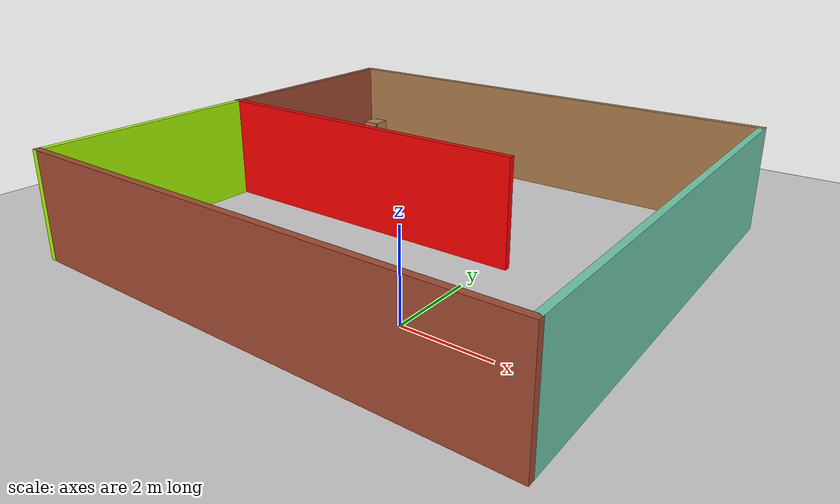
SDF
<sdf version="1.6">
 <world name="default">
  <light name="sun" type="directional">
   <pose>0 0 10 0 -0 0</pose>
   <diffuse>0.8 0.8 0.8 1</diffuse>
   <specular>0.2 0.2 0.2 1</specular>
   <attenuation>
    <range>1000</range>
    <constant>0.9</constant>
    <linear>0.01</linear>
    <quadratic>0.001</quadratic>
   </attenuation>
   <direction>-0.5 0.1 -0.9</direction>
  </light>
  <model name="ground_plane">
   <static>1</static>
   <link name="link">
    <collision name="collision">
     <geometry><plane><normal>0 0 1</normal><size>100 100</size></plane></geometry>
     <surface>
      <contact><collide_bitmask>65535</collide_bitmask></contact>
      <friction><ode><mu>100</mu><mu2>50</mu2></ode></friction>
     </surface>
    </collision>
    <visual name="visual">
     <cast_shadows>0</cast_shadows>
     <geometry><plane><normal>0 0 1</normal><size>100 100</size></plane></geometry>
     <material>
      <script><uri>file://media/materials/scripts/gazebo.material</uri><name>Gazebo/Grey</name></script>
     </material>
    </visual>
   </link>
  </model>
  <gravity>0 0 -9.8</gravity>
  <magnetic_field>6e-06 2.3e-05 -4.2e-05</magnetic_field>
  <atmosphere type="adiabatic"/>
  <physics name="default_physics" default="0" type="ode">
   <max_step_size>0.001</max_step_size>
   <real_time_factor>1</real_time_factor>
   <real_time_update_rate>1000</real_time_update_rate>
  </physics>
  <scene><ambient>0.4 0.4 0.4 1</ambient><background>0.7 0.7 0.7 1</background><shadows>1</shadows></scene>
  <spherical_coordinates>
   <surface_model>EARTH_WGS84</surface_model>
   <latitude_deg>0</latitude_deg>
   <longitude_deg>0</longitude_deg>
   <elevation>0</elevation>
   <heading_deg>0</heading_deg>
  </spherical_coordinates>
  <model name="simple_room">
   <pose>-1.98701 3.15579 0 0 -0 0</pose>
   <link name="Wall_10">
    <collision name="Wall_10_Collision">
     <geometry><box><size>11.75 0.15 2.5</size></box></geometry>
     <pose>0 0 1.25 0 -0 0</pose>
    </collision>
    <visual name="Wall_10_Visual">
     <pose>0 0 1.25 0 -0 0</pose>
     <geometry><box><size>11.75 0.15 2.5</size></box></geometry>
     <material>
      <script><uri>file://media/materials/scripts/gazebo.material</uri><name>Gazebo/Wood</name></script>
      <ambient>0.333333 0 0 1</ambient>
     </material>
     <meta><layer>0</layer></meta>
    </visual>
    <pose>0.017858 5.35 0 0 -0 0</pose>
   </link>
   <link name="Wall_11">
    <collision name="Wall_11_Collision">
     <geometry><box><size>10.75 0.15 2.5</size></box></geometry>
     <pose>0 0 1.25 0 -0 0</pose>
    </collision>
    <visual name="Wall_11_Visual">
     <pose>0 0 1.25 0 -0 0</pose>
     <geometry><box><size>10.75 0.15 2.5</size></box></geometry>
     <material>
      <script><uri>file://media/materials/scripts/gazebo.material</uri><name>Gazebo/Grey</name></script>
      <ambient>0.435294 0.796078 0.67451 1</ambient>
     </material>
     <meta><layer>0</layer></meta>
    </visual>
    <pose>5.81786 0.049997 0 0 0 -1.5708</pose>
   </link>
   <link name="Wall_4">
    <collision name="Wall_4_Collision">
     <geometry><box><size>11.75 0.15 2.5</size></box></geometry>
     <pose>0 0 1.25 0 -0 0</pose>
    </collision>
    <visual name="Wall_4_Visual">
     <pose>0 0 1.25 0 -0 0</pose>
     <geometry><box><size>11.75 0.15 2.5</size></box></geometry>
     <material>
      <script><uri>file://media/materials/scripts/gazebo.material</uri><name>Gazebo/Bricks</name></script>
      <ambient>0.333333 0 0.498039 1</ambient>
     </material>
     <meta><layer>0</layer></meta>
    </visual>
    <pose>0.017858 -5.35 0 0 -0 0</pose>
   </link>
   <link name="Wall_6">
    <collision name="Wall_6_Collision">
     <geometry><box><size>5.55888 0.15 2.5</size></box></geometry>
     <pose>0 0 1.25 0 -0 0</pose>
    </collision>
    <visual name="Wall_6_Visual">
     <pose>0 0 1.25 0 -0 0</pose>
     <geometry><box><size>5.55888 0.15 2.5</size></box></geometry>
     <material>
      <script><uri>file://media/materials/scripts/gazebo.material</uri><name>Gazebo/Grey</name></script>
      <ambient>0.666667 1 0 1</ambient>
     </material>
     <meta><layer>0</layer></meta>
    </visual>
    <pose>-5.7847 -2.64577 0 0 -0 1.57174</pose>
   </link>
   <link name="Wall_7">
    <collision name="Wall_7_Collision">
     <geometry><box><size>8.25 0.15 2.5</size></box></geometry>
     <pose>0 0 1.25 0 -0 0</pose>
    </collision>
    <visual name="Wall_7_Visual">
     <pose>0 0 1.25 0 -0 0</pose>
     <geometry><box><size>8.25 0.15 2.5</size></box></geometry>
     <material>
      <script><uri>file://media/materials/scripts/gazebo.material</uri><name>Gazebo/Grey</name></script>
      <ambient>1 0 0 1</ambient>
     </material>
     <meta><layer>0</layer></meta>
    </visual>
    <pose>-1.76786 0.05847 0 0 -0 0</pose>
   </link>
   <link name="Wall_9">
    <collision name="Wall_9_Collision">
     <geometry><box><size>5.44194 0.15 2.5</size></box></geometry>
     <pose>0 0 1.25 0 -0 0</pose>
    </collision>
    <visual name="Wall_9_Visual">
     <pose>0 0 1.25 0 -0 0</pose>
     <geometry><box><size>5.44194 0.15 2.5</size></box></geometry>
     <material>
      <script><uri>file://media/materials/scripts/gazebo.material</uri><name>Gazebo/Bricks</name></script>
      <ambient>1 1 1 1</ambient>
     </material>
     <meta><layer>0</layer></meta>
    </visual>
    <pose>-5.7847 2.70423 0 0 -0 1.56983</pose>
   </link>
   <static>1</static>
  </model>
  <model name="cabinet">
   <static>1</static>
   <link name="cabinet_bottom_plate">
    <inertial>
     <pose>0 0 -1 0 -0 0</pose>
     <inertia><ixx>2.05</ixx><ixy>0</ixy><ixz>0</ixz><iyy>2.05</iyy><iyz>0</iyz><izz>2.05</izz></inertia>
     <mass>25</mass>
    </inertial>
    <collision name="cabinet_bottom_plate_geom">
     <pose>0 0 0.01 0 -0 0</pose>
     <geometry><box><size>0.45 0.45 0.02</size></box></geometry>
    </collision>
    <visual name="cabinet_bottom_plate_geom_visual">
     <pose>0 0 0.01 0 -0 0</pose>
     <geometry><box><size>0.45 0.45 0.02</size></box></geometry>
     <material>
      <script><uri>file://media/materials/scripts/gazebo.material</uri><name>Gazebo/Wood</name></script>
     </material>
    </visual>
    <collision name="cabinet_bottom_plate_geom_cabinet_back_plate">
     <pose>0.235 0 0.51 0 -0 0</pose>
     <geometry><box><size>0.02 0.45 1.02</size></box></geometry>
    </collision>
    <visual name="cabinet_bottom_plate_geom_cabinet_back_plate_visual">
     <pose>0.235 0 0.51 0 -0 0</pose>
     <geometry><box><size>0.02 0.45 1.02</size></box></geometry>
     <material>
      <script><uri>file://media/materials/scripts/gazebo.material</uri><name>Gazebo/Wood</name></script>
     </material>
    </visual>
    <collision name="cabinet_bottom_plate_geom_cabinet_left_plate">
     <pose>0 0.235 0.51 0 -0 0</pose>
     <geometry><box><size>0.45 0.02 1.02</size></box></geometry>
    </collision>
    <visual name="cabinet_bottom_plate_geom_cabinet_left_plate_visual">
     <pose>0 0.235 0.51 0 -0 0</pose>
     <geometry><box><size>0.45 0.02 1.02</size></box></geometry>
     <material>
      <script><uri>file://media/materials/scripts/gazebo.material</uri><name>Gazebo/Wood</name></script>
     </material>
    </visual>
    <collision name="cabinet_bottom_plate_geom_cabinet_middle_plate">
     <pose>0 0 0.51 0 -0 0</pose>
     <geometry><box><size>0.45 0.45 0.02</size></box></geometry>
    </collision>
    <visual name="cabinet_bottom_plate_geom_cabinet_middle_plate_visual">
     <pose>0 0 0.51 0 -0 0</pose>
     <geometry><box><size>0.45 0.45 0.02</size></box></geometry>
     <material>
      <script><uri>file://media/materials/scripts/gazebo.material</uri><name>Gazebo/Wood</name></script>
     </material>
    </visual>
    <collision name="cabinet_bottom_plate_geom_cabinet_right_plate">
     <pose>0 -0.235 0.51 0 -0 0</pose>
     <geometry><box><size>0.45 0.02 1.02</size></box></geometry>
    </collision>
    <visual name="cabinet_bottom_plate_geom_cabinet_right_plate_visual">
     <pose>0 -0.235 0.51 0 -0 0</pose>
     <geometry><box><size>0.45 0.02 1.02</size></box></geometry>
     <material>
      <script><uri>file://media/materials/scripts/gazebo.material</uri><name>Gazebo/Wood</name></script>
     </material>
    </visual>
    <collision name="cabinet_bottom_plate_geom_cabinet_top_plate">
     <pose>0 0 1.01 0 -0 0</pose>
     <geometry><box><size>0.45 0.45 0.02</size></box></geometry>
    </collision>
    <visual name="cabinet_bottom_plate_geom_cabinet_top_plate_visual">
     <pose>0 0 1.01 0 -0 0</pose>
     <geometry><box><size>0.45 0.45 0.02</size></box></geometry>
     <material>
      <script><uri>file://media/materials/scripts/gazebo.material</uri><name>Gazebo/Wood</name></script>
     </material>
    </visual>
   </link>
   <pose>-7.149 7.96706 0 0 -0 0</pose>
  </model>
  <model name="table">
   <static>1</static>
   <link name="link">
    <collision name="surface">
     <pose>0 0 1 0 -0 0</pose>
     <geometry><box><size>1.5 0.8 0.03</size></box></geometry>
     <surface><friction><ode><mu>0.6</mu><mu2>0.6</mu2></ode></friction></surface>
    </collision>
    <visual name="visual1">
     <pose>0 0 1 0 -0 0</pose>
     <geometry><box><size>1.5 0.8 0.03</size></box></geometry>
     <material>
      <script><uri>file://media/materials/scripts/gazebo.material</uri><name>Gazebo/Wood</name></script>
     </material>
    </visual>
    <collision name="front_left_leg">
     <pose>0.68 0.38 0.5 0 -0 0</pose>
     <geometry><cylinder><radius>0.02</radius><length>1</length></cylinder></geometry>
    </collision>
    <visual name="front_left_leg">
     <pose>0.68 0.38 0.5 0 -0 0</pose>
     <geometry><cylinder><radius>0.02</radius><length>1</length></cylinder></geometry>
     <material>
      <script><uri>file://media/materials/scripts/gazebo.material</uri><name>Gazebo/Grey</name></script>
     </material>
    </visual>
    <collision name="front_right_leg">
     <pose>0.68 -0.38 0.5 0 -0 0</pose>
     <geometry><cylinder><radius>0.02</radius><length>1</length></cylinder></geometry>
    </collision>
    <visual name="front_right_leg">
     <pose>0.68 -0.38 0.5 0 -0 0</pose>
     <geometry><cylinder><radius>0.02</radius><length>1</length></cylinder></geometry>
     <material>
      <script><uri>file://media/materials/scripts/gazebo.material</uri><name>Gazebo/Grey</name></script>
     </material>
    </visual>
    <collision name="back_right_leg">
     <pose>-0.68 -0.38 0.5 0 -0 0</pose>
     <geometry><cylinder><radius>0.02</radius><length>1</length></cylinder></geometry>
    </collision>
    <visual name="back_right_leg">
     <pose>-0.68 -0.38 0.5 0 -0 0</pose>
     <geometry><cylinder><radius>0.02</radius><length>1</length></cylinder></geometry>
     <material>
      <script><uri>file://media/materials/scripts/gazebo.material</uri><name>Gazebo/Grey</name></script>
     </material>
    </visual>
    <collision name="back_left_leg">
     <pose>-0.68 0.38 0.5 0 -0 0</pose>
     <geometry><cylinder><radius>0.02</radius><length>1</length></cylinder></geometry>
    </collision>
    <visual name="back_left_leg">
     <pose>-0.68 0.38 0.5 0 -0 0</pose>
     <geometry><cylinder><radius>0.02</radius><length>1</length></cylinder></geometry>
     <material>
      <script><uri>file://media/materials/scripts/gazebo.material</uri><name>Gazebo/Grey</name></script>
     </material>
    </visual>
   </link>
   <pose>-3.28355 3.9407 0 0 -0 0</pose>
  </model>
  <model name="wooden_case">
   <link name="base">
    <pose>0 0 0.024 0 -0 0</pose>
    <inertial>
     <pose>-0.022184 0 0.171592 0 -0 0</pose>
     <mass>3.96264</mass>
     <inertia>
      <ixx>0.213536</ixx>
      <ixy>0</ixy>
      <ixz>0.000779377</ixz>
      <iyy>0.0708943</iyy>
      <iyz>0</iyz>
      <izz>0.154604</izz>
     </inertia>
    </inertial>
    <collision name="collision_back">
     <pose>-0.053975 0 0.1778 0 -0 0</pose>
     <geometry><box><size>0.01905 0.5461 0.3175</size></box></geometry>
     <surface>
      <contact>
       <poissons_ratio>0.347</poissons_ratio>
       <elastic_modulus>8.8e+09</elastic_modulus>
       <ode><kp>100000</kp><kd>100</kd><max_vel>100</max_vel><min_depth>0.001</min_depth></ode>
      </contact>
      <friction>
       <torsional>
        <coefficient>1</coefficient>
        <use_patch_radius>0</use_patch_radius>
        <surface_radius>0.01</surface_radius>
       </torsional>
      </friction>
     </surface>
    </collision>
    <visual name="visual_back">
     <pose>-0.053975 0 0.1778 0 -0 0</pose>
     <geometry><box><size>0.01905 0.5461 0.3175</size></box></geometry>
     <material>
      <script><uri>file://media/materials/scripts/gazebo.material</uri><name>Gazebo/Wood</name></script>
     </material>
    </visual>
    <collision name="collision_bottom">
     <pose>0 0 0.009525 0 -0 0</pose>
     <geometry><box><size>0.127 0.5842 0.01905</size></box></geometry>
     <surface>
      <contact>
       <poissons_ratio>0.347</poissons_ratio>
       <elastic_modulus>8.8e+09</elastic_modulus>
       <ode><kp>100000</kp><kd>100</kd><max_vel>100</max_vel><min_depth>0.001</min_depth></ode>
      </contact>
      <friction>
       <torsional>
        <coefficient>1</coefficient>
        <use_patch_radius>0</use_patch_radius>
        <surface_radius>0.01</surface_radius>
       </torsional>
      </friction>
     </surface>
    </collision>
    <visual name="visual_bottom">
     <pose>0 0 0.009525 0 -0 0</pose>
     <geometry><box><size>0.127 0.5842 0.01905</size></box></geometry>
     <material>
      <script><uri>file://media/materials/scripts/gazebo.material</uri><name>Gazebo/Wood</name></script>
     </material>
    </visual>
    <collision name="collision_top">
     <pose>0 0 0.346075 0 -0 0</pose>
     <geometry><box><size>0.127 0.5842 0.01905</size></box></geometry>
     <surface>
      <contact>
       <poissons_ratio>0.347</poissons_ratio>
       <elastic_modulus>8.8e+09</elastic_modulus>
       <ode><kp>100000</kp><kd>100</kd><max_vel>100</max_vel><min_depth>0.001</min_depth></ode>
      </contact>
      <friction>
       <torsional>
        <coefficient>1</coefficient>
        <use_patch_radius>0</use_patch_radius>
        <surface_radius>0.01</surface_radius>
       </torsional>
      </friction>
     </surface>
    </collision>
    <visual name="visual_top">
     <pose>0 0 0.346075 0 -0 0</pose>
     <geometry><box><size>0.127 0.5842 0.01905</size></box></geometry>
     <material>
      <script><uri>file://media/materials/scripts/gazebo.material</uri><name>Gazebo/Wood</name></script>
     </material>
    </visual>
    <collision name="collision_left">
     <pose>0 -0.282575 0.1778 0 -0 0</pose>
     <geometry><box><size>0.127 0.01905 0.3175</size></box></geometry>
     <surface>
      <contact>
       <poissons_ratio>0.347</poissons_ratio>
       <elastic_modulus>8.8e+09</elastic_modulus>
       <ode><kp>100000</kp><kd>100</kd><max_vel>100</max_vel><min_depth>0.001</min_depth></ode>
      </contact>
      <friction>
       <torsional>
        <coefficient>1</coefficient>
        <use_patch_radius>0</use_patch_radius>
        <surface_radius>0.01</surface_radius>
       </torsional>
      </friction>
     </surface>
    </collision>
    <visual name="visual_left">
     <pose>0 -0.282575 0.1778 0 -0 0</pose>
     <geometry><box><size>0.127 0.01905 0.3175</size></box></geometry>
     <material>
      <script><uri>file://media/materials/scripts/gazebo.material</uri><name>Gazebo/Wood</name></script>
     </material>
    </visual>
    <collision name="collision_right">
     <pose>0 0.282575 0.1778 0 -0 0</pose>
     <geometry><box><size>0.127 0.01905 0.3175</size></box></geometry>
     <surface>
      <contact>
       <poissons_ratio>0.347</poissons_ratio>
       <elastic_modulus>8.8e+09</elastic_modulus>
       <ode><kp>100000</kp><kd>100</kd><max_vel>100</max_vel><min_depth>0.001</min_depth></ode>
      </contact>
      <friction>
       <torsional>
        <coefficient>1</coefficient>
        <use_patch_radius>0</use_patch_radius>
        <surface_radius>0.01</surface_radius>
       </torsional>
      </friction>
     </surface>
    </collision>
    <visual name="visual_right">
     <pose>0 0.282575 0.1778 0 -0 0</pose>
     <geometry><box><size>0.127 0.01905 0.3175</size></box></geometry>
     <material>
      <script><uri>file://media/materials/scripts/gazebo.material</uri><name>Gazebo/Wood</name></script>
     </material>
    </visual>
    <collision name="collision_block_left">
     <pose>0.0095 -0.2151 -0.012 0 -0 0</pose>
     <geometry><box><size>0.108 0.05 0.024</size></box></geometry>
     <surface>
      <contact>
       <poissons_ratio>0.347</poissons_ratio>
       <elastic_modulus>8.8e+09</elastic_modulus>
       <ode><kp>100000</kp><kd>100</kd><max_vel>100</max_vel><min_depth>0.001</min_depth></ode>
      </contact>
      <friction>
       <torsional>
        <coefficient>1</coefficient>
        <use_patch_radius>0</use_patch_radius>
        <surface_radius>0.01</surface_radius>
       </torsional>
      </friction>
     </surface>
    </collision>
    <visual name="visual_block_left">
     <pose>0.0095 -0.2151 -0.012 0 -0 0</pose>
     <geometry><box><size>0.108 0.05 0.024</size></box></geometry>
     <material>
      <script><uri>file://media/materials/scripts/gazebo.material</uri><name>Gazebo/Wood</name></script>
     </material>
    </visual>
    <collision name="collision_block_right">
     <pose>0.0095 0.2151 -0.012 0 -0 0</pose>
     <geometry><box><size>0.108 0.05 0.024</size></box></geometry>
     <surface>
      <contact>
       <poissons_ratio>0.347</poissons_ratio>
       <elastic_modulus>8.8e+09</elastic_modulus>
       <ode><kp>100000</kp><kd>100</kd><max_vel>100</max_vel><min_depth>0.001</min_depth></ode>
      </contact>
      <friction>
       <torsional>
        <coefficient>1</coefficient>
        <use_patch_radius>0</use_patch_radius>
        <surface_radius>0.01</surface_radius>
       </torsional>
      </friction>
     </surface>
    </collision>
    <visual name="visual_block_right">
     <pose>0.0095 0.2151 -0.012 0 -0 0</pose>
     <geometry><box><size>0.108 0.05 0.024</size></box></geometry>
     <material>
      <script><uri>file://media/materials/scripts/gazebo.material</uri><name>Gazebo/Wood</name></script>
     </material>
    </visual>
   </link>
   <link name="lid">
    <pose>0.243775 0 0.009525 0 -0 0</pose>
    <inertial>
     <mass>1.97874</mass>
     <inertia>
      <ixx>0.0563367</ixx>
      <ixy>0</ixy>
      <ixz>0</ixz>
      <iyy>0.020911</iyy>
      <iyz>0</iyz>
      <izz>0.0771281</izz>
     </inertia>
    </inertial>
    <collision name="collision">
     <geometry><box><size>0.3556 0.5842 0.01905</size></box></geometry>
     <surface>
      <contact>
       <poissons_ratio>0.347</poissons_ratio>
       <elastic_modulus>8.8e+09</elastic_modulus>
       <ode><kp>100000</kp><kd>100</kd><max_vel>100</max_vel><min_depth>0.001</min_depth></ode>
      </contact>
      <friction>
       <torsional>
        <coefficient>1</coefficient>
        <use_patch_radius>0</use_patch_radius>
        <surface_radius>0.01</surface_radius>
       </torsional>
      </friction>
     </surface>
    </collision>
    <visual name="visual">
     <geometry><box><size>0.3556 0.5842 0.01905</size></box></geometry>
     <material>
      <script><uri>file://media/materials/scripts/gazebo.material</uri><name>Gazebo/Wood</name></script>
     </material>
    </visual>
    <visual name="tee_nut_1">
     <pose>0.122 -0.216 0 0 -0 0</pose>
     <geometry><cylinder><radius>0.00635</radius><length>0.0192405</length></cylinder></geometry>
     <material>
      <script><uri>file://media/materials/scripts/gazebo.material</uri><name>Gazebo/Grey</name></script>
     </material>
    </visual>
    <visual name="tee_nut_2">
     <pose>0.122 -0.088 0 0 -0 0</pose>
     <geometry><cylinder><radius>0.00635</radius><length>0.0192405</length></cylinder></geometry>
     <material>
      <script><uri>file://media/materials/scripts/gazebo.material</uri><name>Gazebo/Grey</name></script>
     </material>
    </visual>
    <visual name="tee_nut_3">
     <pose>0.122 0.088 0 0 -0 0</pose>
     <geometry><cylinder><radius>0.00635</radius><length>0.0192405</length></cylinder></geometry>
     <material>
      <script><uri>file://media/materials/scripts/gazebo.material</uri><name>Gazebo/Grey</name></script>
     </material>
    </visual>
    <visual name="tee_nut_4">
     <pose>0.122 0.216 0 0 -0 0</pose>
     <geometry><cylinder><radius>0.00635</radius><length>0.0192405</length></cylinder></geometry>
     <material>
      <script><uri>file://media/materials/scripts/gazebo.material</uri><name>Gazebo/Grey</name></script>
     </material>
    </visual>
   </link>
   <joint name="lid_hinge" type="revolute">
    <pose>-0.1778 0 0.01905 0 -0 0</pose>
    <parent>base</parent>
    <child>lid</child>
    <axis>
     <xyz>0 1 0</xyz>
     <limit><upper>0.523599</upper><lower>-1.5708</lower></limit>
     <use_parent_model_frame>0</use_parent_model_frame>
     <dynamics><spring_reference>0</spring_reference><spring_stiffness>0</spring_stiffness></dynamics>
    </axis>
   </joint>
   <pose>-3.47462 -1.70058 -0.001057 0 -0.000429 0</pose>
  </model>
 </world>
</sdf>
